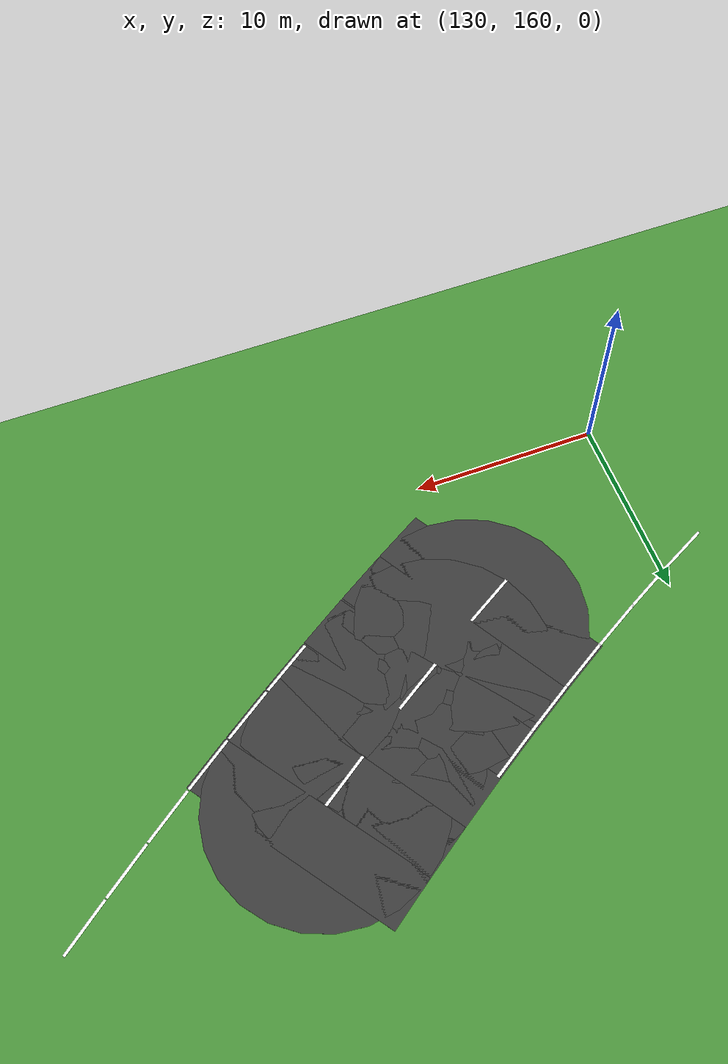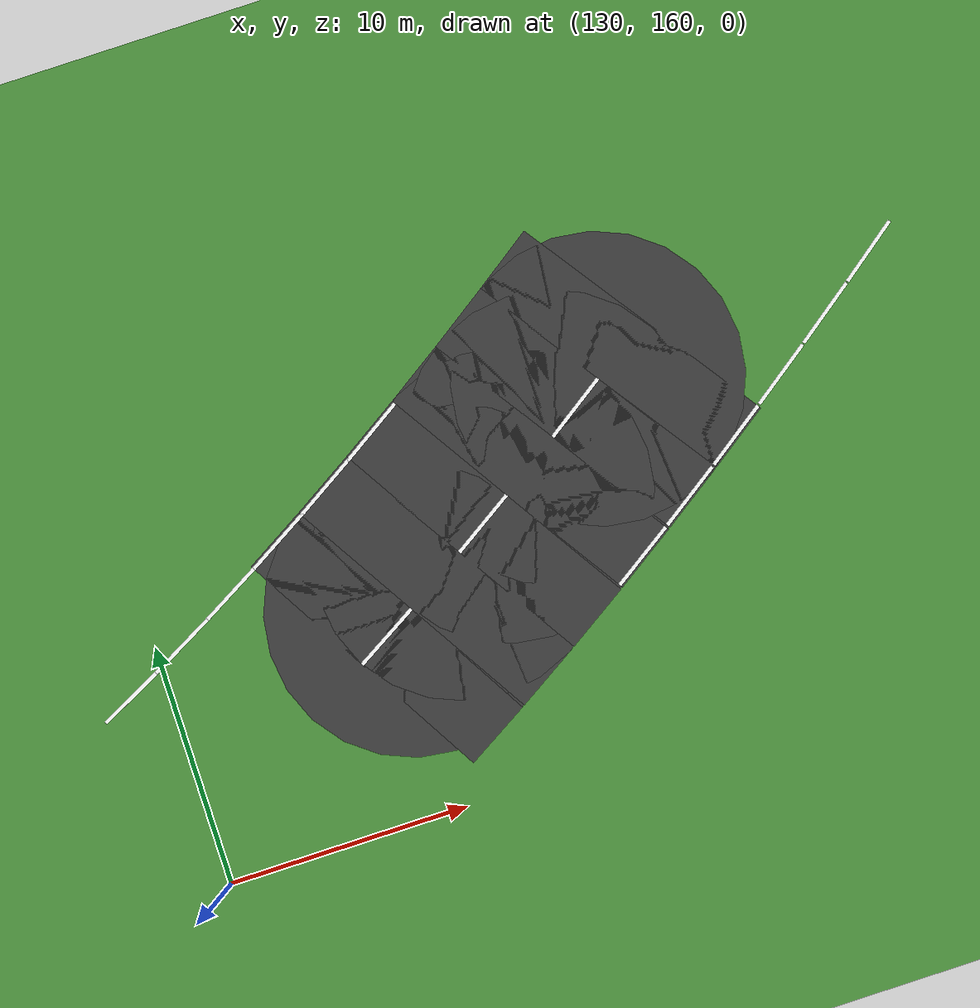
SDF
<sdf version="1.6">
 <world name="sem_silesia_ring_2026">
  <model name="ground_plane">
   <static>true</static>
   <link name="link">
    <collision name="collision">
     <geometry><plane><normal>0 0 1</normal><size>1200 1200</size></plane></geometry>
     <surface><friction><ode><mu>0.6</mu><mu2>0.6</mu2></ode></friction></surface>
    </collision>
    <visual name="visual">
     <geometry><plane><normal>0 0 1</normal><size>1200 1200</size></plane></geometry>
     <material><ambient>0.28 0.55 0.22 1</ambient><diffuse>0.28 0.55 0.22 1</diffuse></material>
    </visual>
   </link>
  </model>
  <model name="wl_L_s262">
   <static>true</static>
   <pose>162.4258 176.3320 0.0070 0 0 -2.4937</pose>
   <link name="link">
    <visual name="v">
     <geometry><box><size>3.0025 0.1500 0.0080</size></box></geometry>
     <material><ambient>0.95 0.95 0.95 1</ambient><diffuse>0.95 0.95 0.95 1</diffuse></material>
    </visual>
   </link>
  </model>
  <model name="wl_L_s263">
   <static>true</static>
   <pose>159.9712 174.4951 0.0070 0 0 -2.5045</pose>
   <link name="link">
    <visual name="v">
     <geometry><box><size>3.0025 0.1500 0.0080</size></box></geometry>
     <material><ambient>0.95 0.95 0.95 1</ambient><diffuse>0.95 0.95 0.95 1</diffuse></material>
    </visual>
   </link>
  </model>
  <model name="wl_L_s264">
   <static>true</static>
   <pose>157.4911 172.6825 0.0070 0 0 -2.5164</pose>
   <link name="link">
    <visual name="v">
     <geometry><box><size>3.0025 0.1500 0.0080</size></box></geometry>
     <material><ambient>0.95 0.95 0.95 1</ambient><diffuse>0.95 0.95 0.95 1</diffuse></material>
    </visual>
   </link>
  </model>
  <model name="road_s265">
   <static>true</static>
   <pose>151.6216 175.6845 0.0030 0 0 -2.5293</pose>
   <link name="link">
    <visual name="v">
     <geometry><box><size>3.0025 12.0000 0.0060</size></box></geometry>
     <material><ambient>0.22 0.22 0.22 1</ambient><diffuse>0.22 0.22 0.22 1</diffuse></material>
    </visual>
    <collision name="c">
     <geometry><box><size>3.0025 12.0000 0.0060</size></box></geometry>
     <surface><friction><ode><mu>0.9</mu><mu2>0.9</mu2></ode></friction></surface>
    </collision>
   </link>
  </model>
  <model name="wl_L_s265">
   <static>true</static>
   <pose>154.9840 170.8974 0.0070 0 0 -2.5293</pose>
   <link name="link">
    <visual name="v">
     <geometry><box><size>3.0025 0.1500 0.0080</size></box></geometry>
     <material><ambient>0.95 0.95 0.95 1</ambient><diffuse>0.95 0.95 0.95 1</diffuse></material>
    </visual>
   </link>
  </model>
  <model name="road_s266">
   <static>true</static>
   <pose>149.1527 173.9760 0.0030 0 0 -2.5432</pose>
   <link name="link">
    <visual name="v">
     <geometry><box><size>3.0025 12.0000 0.0060</size></box></geometry>
     <material><ambient>0.22 0.22 0.22 1</ambient><diffuse>0.22 0.22 0.22 1</diffuse></material>
    </visual>
    <collision name="c">
     <geometry><box><size>3.0025 12.0000 0.0060</size></box></geometry>
     <surface><friction><ode><mu>0.9</mu><mu2>0.9</mu2></ode></friction></surface>
    </collision>
   </link>
  </model>
  <model name="road_jnt266">
   <static>true</static>
   <pose>150.3931 174.8217 0.0030 0 0 0</pose>
   <link name="link">
    <visual name="v">
     <geometry><cylinder><radius>6.0000</radius><length>0.0060</length></cylinder></geometry>
     <material><ambient>0.22 0.22 0.22 1</ambient><diffuse>0.22 0.22 0.22 1</diffuse></material>
    </visual>
    <collision name="c">
     <geometry><cylinder><radius>6.0000</radius><length>0.0060</length></cylinder></geometry>
     <surface><friction><ode><mu>0.9</mu><mu2>0.9</mu2></ode></friction></surface>
    </collision>
   </link>
  </model>
  <model name="wl_L_s266">
   <static>true</static>
   <pose>152.4483 169.1426 0.0070 0 0 -2.5432</pose>
   <link name="link">
    <visual name="v">
     <geometry><box><size>3.0025 0.1500 0.0080</size></box></geometry>
     <material><ambient>0.95 0.95 0.95 1</ambient><diffuse>0.95 0.95 0.95 1</diffuse></material>
    </visual>
   </link>
  </model>
  <model name="cd_s266">
   <static>true</static>
   <pose>149.1527 173.9760 0.0070 0 0 -2.5432</pose>
   <link name="link">
    <visual name="v">
     <geometry><box><size>3.0025 0.1500 0.0080</size></box></geometry>
     <material><ambient>0.95 0.95 0.95 1</ambient><diffuse>0.95 0.95 0.95 1</diffuse></material>
    </visual>
   </link>
  </model>
  <model name="road_s267">
   <static>true</static>
   <pose>146.6595 172.3031 0.0030 0 0 -2.5580</pose>
   <link name="link">
    <visual name="v">
     <geometry><box><size>3.0025 12.0000 0.0060</size></box></geometry>
     <material><ambient>0.22 0.22 0.22 1</ambient><diffuse>0.22 0.22 0.22 1</diffuse></material>
    </visual>
    <collision name="c">
     <geometry><box><size>3.0025 12.0000 0.0060</size></box></geometry>
     <surface><friction><ode><mu>0.9</mu><mu2>0.9</mu2></ode></friction></surface>
    </collision>
   </link>
  </model>
  <model name="road_jnt267">
   <static>true</static>
   <pose>147.9124 173.1302 0.0030 0 0 0</pose>
   <link name="link">
    <visual name="v">
     <geometry><cylinder><radius>6.0000</radius><length>0.0060</length></cylinder></geometry>
     <material><ambient>0.22 0.22 0.22 1</ambient><diffuse>0.22 0.22 0.22 1</diffuse></material>
    </visual>
    <collision name="c">
     <geometry><cylinder><radius>6.0000</radius><length>0.0060</length></cylinder></geometry>
     <surface><friction><ode><mu>0.9</mu><mu2>0.9</mu2></ode></friction></surface>
    </collision>
   </link>
  </model>
  <model name="wl_L_s267">
   <static>true</static>
   <pose>149.8828 167.4212 0.0070 0 0 -2.5580</pose>
   <link name="link">
    <visual name="v">
     <geometry><box><size>3.0025 0.1500 0.0080</size></box></geometry>
     <material><ambient>0.95 0.95 0.95 1</ambient><diffuse>0.95 0.95 0.95 1</diffuse></material>
    </visual>
   </link>
  </model>
  <model name="road_s268">
   <static>true</static>
   <pose>144.1410 170.6687 0.0030 0 0 -2.5739</pose>
   <link name="link">
    <visual name="v">
     <geometry><box><size>3.0025 12.0000 0.0060</size></box></geometry>
     <material><ambient>0.22 0.22 0.22 1</ambient><diffuse>0.22 0.22 0.22 1</diffuse></material>
    </visual>
    <collision name="c">
     <geometry><box><size>3.0025 12.0000 0.0060</size></box></geometry>
     <surface><friction><ode><mu>0.9</mu><mu2>0.9</mu2></ode></friction></surface>
    </collision>
   </link>
  </model>
  <model name="road_jnt268">
   <static>true</static>
   <pose>145.4067 171.4759 0.0030 0 0 0</pose>
   <link name="link">
    <visual name="v">
     <geometry><cylinder><radius>6.0000</radius><length>0.0060</length></cylinder></geometry>
     <material><ambient>0.22 0.22 0.22 1</ambient><diffuse>0.22 0.22 0.22 1</diffuse></material>
    </visual>
    <collision name="c">
     <geometry><cylinder><radius>6.0000</radius><length>0.0060</length></cylinder></geometry>
     <surface><friction><ode><mu>0.9</mu><mu2>0.9</mu2></ode></friction></surface>
    </collision>
   </link>
  </model>
  <model name="wl_R_s268">
   <static>true</static>
   <pose>140.9954 175.6011 0.0070 0 0 -2.5739</pose>
   <link name="link">
    <visual name="v">
     <geometry><box><size>3.0025 0.1500 0.0080</size></box></geometry>
     <material><ambient>0.95 0.95 0.95 1</ambient><diffuse>0.95 0.95 0.95 1</diffuse></material>
    </visual>
   </link>
  </model>
  <model name="cd_s268">
   <static>true</static>
   <pose>144.1410 170.6687 0.0070 0 0 -2.5739</pose>
   <link name="link">
    <visual name="v">
     <geometry><box><size>3.0025 0.1500 0.0080</size></box></geometry>
     <material><ambient>0.95 0.95 0.95 1</ambient><diffuse>0.95 0.95 0.95 1</diffuse></material>
    </visual>
   </link>
  </model>
  <model name="road_s269">
   <static>true</static>
   <pose>141.5960 169.0756 0.0030 0 0 -2.5907</pose>
   <link name="link">
    <visual name="v">
     <geometry><box><size>3.0025 12.0000 0.0060</size></box></geometry>
     <material><ambient>0.22 0.22 0.22 1</ambient><diffuse>0.22 0.22 0.22 1</diffuse></material>
    </visual>
    <collision name="c">
     <geometry><box><size>3.0025 12.0000 0.0060</size></box></geometry>
     <surface><friction><ode><mu>0.9</mu><mu2>0.9</mu2></ode></friction></surface>
    </collision>
   </link>
  </model>
  <model name="road_jnt269">
   <static>true</static>
   <pose>142.8752 169.8615 0.0030 0 0 0</pose>
   <link name="link">
    <visual name="v">
     <geometry><cylinder><radius>6.0000</radius><length>0.0060</length></cylinder></geometry>
     <material><ambient>0.22 0.22 0.22 1</ambient><diffuse>0.22 0.22 0.22 1</diffuse></material>
    </visual>
    <collision name="c">
     <geometry><cylinder><radius>6.0000</radius><length>0.0060</length></cylinder></geometry>
     <surface><friction><ode><mu>0.9</mu><mu2>0.9</mu2></ode></friction></surface>
    </collision>
   </link>
  </model>
  <model name="wl_R_s269">
   <static>true</static>
   <pose>138.5338 174.0601 0.0070 0 0 -2.5907</pose>
   <link name="link">
    <visual name="v">
     <geometry><box><size>3.0025 0.1500 0.0080</size></box></geometry>
     <material><ambient>0.95 0.95 0.95 1</ambient><diffuse>0.95 0.95 0.95 1</diffuse></material>
    </visual>
   </link>
  </model>
  <model name="road_s270">
   <static>true</static>
   <pose>139.0240 167.5267 0.0030 0 0 -2.6084</pose>
   <link name="link">
    <visual name="v">
     <geometry><box><size>3.0025 12.0000 0.0060</size></box></geometry>
     <material><ambient>0.22 0.22 0.22 1</ambient><diffuse>0.22 0.22 0.22 1</diffuse></material>
    </visual>
    <collision name="c">
     <geometry><box><size>3.0025 12.0000 0.0060</size></box></geometry>
     <surface><friction><ode><mu>0.9</mu><mu2>0.9</mu2></ode></friction></surface>
    </collision>
   </link>
  </model>
  <model name="road_jnt270">
   <static>true</static>
   <pose>140.3169 168.2898 0.0030 0 0 0</pose>
   <link name="link">
    <visual name="v">
     <geometry><cylinder><radius>6.0000</radius><length>0.0060</length></cylinder></geometry>
     <material><ambient>0.22 0.22 0.22 1</ambient><diffuse>0.22 0.22 0.22 1</diffuse></material>
    </visual>
    <collision name="c">
     <geometry><cylinder><radius>6.0000</radius><length>0.0060</length></cylinder></geometry>
     <surface><friction><ode><mu>0.9</mu><mu2>0.9</mu2></ode></friction></surface>
    </collision>
   </link>
  </model>
  <model name="wl_R_s270">
   <static>true</static>
   <pose>136.0506 172.5647 0.0070 0 0 -2.6084</pose>
   <link name="link">
    <visual name="v">
     <geometry><box><size>3.0025 0.1500 0.0080</size></box></geometry>
     <material><ambient>0.95 0.95 0.95 1</ambient><diffuse>0.95 0.95 0.95 1</diffuse></material>
    </visual>
   </link>
  </model>
  <model name="cd_s270">
   <static>true</static>
   <pose>139.0240 167.5267 0.0070 0 0 -2.6084</pose>
   <link name="link">
    <visual name="v">
     <geometry><box><size>3.0025 0.1500 0.0080</size></box></geometry>
     <material><ambient>0.95 0.95 0.95 1</ambient><diffuse>0.95 0.95 0.95 1</diffuse></material>
    </visual>
   </link>
  </model>
  <model name="wl_R_s271">
   <static>true</static>
   <pose>133.5451 171.1172 0.0070 0 0 -2.6270</pose>
   <link name="link">
    <visual name="v">
     <geometry><box><size>3.0025 0.1500 0.0080</size></box></geometry>
     <material><ambient>0.95 0.95 0.95 1</ambient><diffuse>0.95 0.95 0.95 1</diffuse></material>
    </visual>
   </link>
  </model>
  <model name="wl_R_s272">
   <static>true</static>
   <pose>131.0216 169.7243 0.0070 0 0 -2.6475</pose>
   <link name="link">
    <visual name="v">
     <geometry><box><size>3.0025 0.1500 0.0080</size></box></geometry>
     <material><ambient>0.95 0.95 0.95 1</ambient><diffuse>0.95 0.95 0.95 1</diffuse></material>
    </visual>
   </link>
  </model>
  <model name="wl_R_s273">
   <static>true</static>
   <pose>128.4943 168.4048 0.0070 0 0 -2.6733</pose>
   <link name="link">
    <visual name="v">
     <geometry><box><size>3.0024 0.1500 0.0080</size></box></geometry>
     <material><ambient>0.95 0.95 0.95 1</ambient><diffuse>0.95 0.95 0.95 1</diffuse></material>
    </visual>
   </link>
  </model>
 </world>
</sdf>
